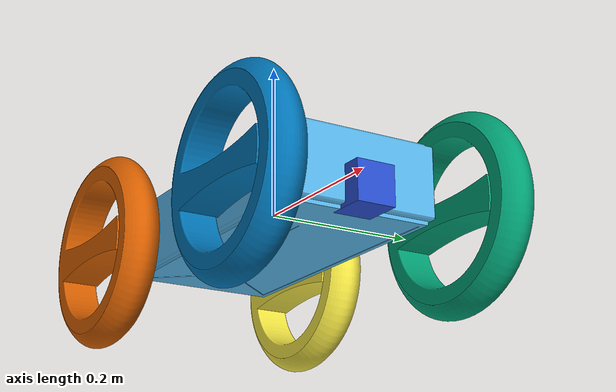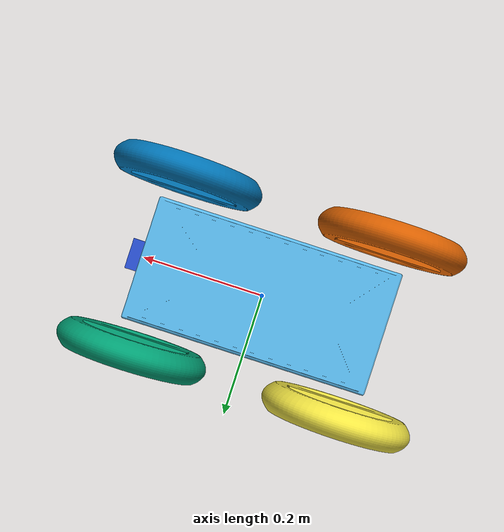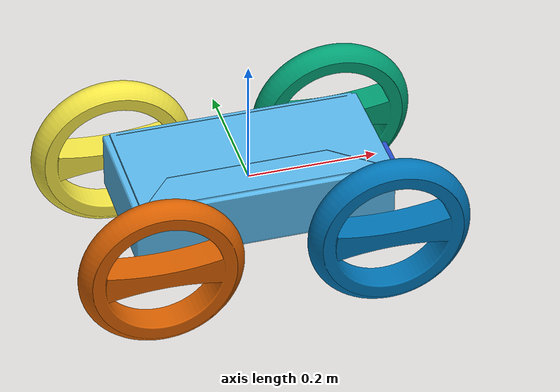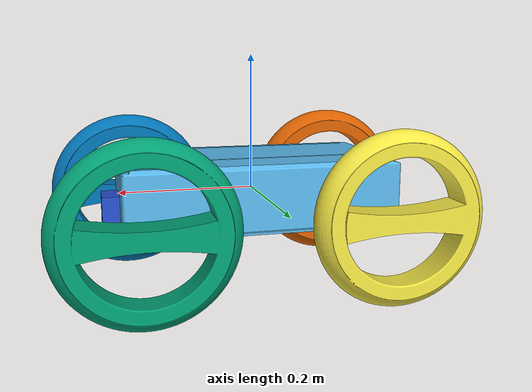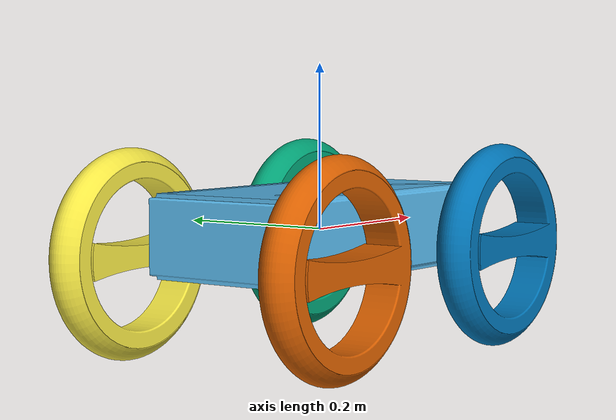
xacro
<?xml version='1.0'?>

<robot name="iBot"
  xmlns:xacro="http://www.ros.org/wiki/xacro">

  <xacro:include filename="iBot.gazebo" />

  <link name="robot_footprint"></link>

  <joint name="robot_footprint_joint" type="fixed">
    <origin xyz="0 0 0" rpy="0 0 0" />
    <parent link="robot_footprint"/>
    <child link="chassis" />
  </joint>

  <link name='chassis'>
    <pose>0 0 0 0 0 0</pose>

    <inertial>
      <mass value="15.0"/>
      <origin xyz="0.0 0 0" rpy=" 0 0 0"/>
      <inertia ixx="0.1" ixy="0" ixz="0" iyy="0.1" iyz="0" izz="0.1" />
    </inertial>

    <collision name='collision'>
      <origin xyz="0 0 0" rpy=" 0 0 0"/>
      <geometry>
        <box size=".4 .2 .1"/>
      </geometry>
    </collision>

    <visual name='chassis_visual'>
      <origin xyz="0 -0.1 0" rpy=" 0 0 0"/>
      <geometry>
        <mesh filename="package://iBot/meshes/chassis.obj"/>
      </geometry>
      <transparency>0</transparency>
      <cast_shadows>1</cast_shadows>
    </visual>
  </link>

  <link name="front_left_wheel">
    <inertial>
      <mass value="5.0"/>
      <origin xyz="0.0 0 0" rpy=" 0 1.5707 1.5707"/>
      <inertia ixx="0.0285" ixy="0" ixz="0" iyy="0.0285" iyz="0" izz="0.0391" />
    </inertial>

    <visual>
      <origin xyz="0 -0.025 0" rpy=" 0 0 0"/>
      <geometry>
        <mesh filename="package://iBot/meshes/wheel.obj"/>
      </geometry>
      <transparency>0</transparency>
      <cast_shadows>1</cast_shadows>
    </visual>

    <collision>
      <origin xyz="0.0 0 0" rpy=" 0 1.5707 1.5707"/>
      <geometry>
        <cylinder length="0.05" radius="0.125"/>
      </geometry>
    </collision>
  </link>

  <link name="back_left_wheel">
    <inertial>
      <mass value="5.0"/>
      <origin xyz="0.0 0 0" rpy=" 0 1.5707 1.5707"/>
      <inertia ixx="0.0285" ixy="0" ixz="0" iyy="0.0285" iyz="0" izz="0.0391" />
    </inertial>

    <visual>
      <origin xyz="0 -0.025 0" rpy=" 0 0 0"/>
      <geometry>
        <mesh filename="package://iBot/meshes/wheel.obj"/>
      </geometry>
      <transparency>0</transparency>
      <cast_shadows>1</cast_shadows>
    </visual>

    <collision>
      <origin xyz="0.0 0 0" rpy=" 0 1.5707 1.5707"/>
      <geometry>
        <cylinder length="0.05" radius="0.125"/>
      </geometry>
    </collision>
  </link>

  <link name="front_right_wheel">
    <inertial>
      <mass value="5.0"/>
      <origin xyz="0.0 0 0" rpy=" 0 1.5707 1.5707"/>
      <inertia ixx="0.1" ixy="0" ixz="0" iyy="0.1" iyz="0" izz="0.1" />
    </inertial>

    <visual>
      <origin xyz="0 -0.025 0" rpy=" 0 0 0"/>
      <geometry>
        <mesh filename="package://iBot/meshes/wheel.obj"/>
      </geometry>
      <transparency>0</transparency>
      <cast_shadows>1</cast_shadows>
    </visual>

    <collision>
      <origin xyz="0.0 0 0" rpy=" 0 1.5707 1.5707"/>
      <geometry>
        <cylinder length="0.05" radius="0.125"/>
      </geometry>
    </collision>
  </link>

  <link name="back_right_wheel">
    <inertial>
      <mass value="5.0"/>
      <origin xyz="0.0 0 0" rpy=" 0 1.5707 1.5707"/>
      <inertia ixx="0.0285" ixy="0" ixz="0" iyy="0.0285" iyz="0" izz="0.0391" />
    </inertial>

    <visual>
      <origin xyz="0 -0.025 0" rpy=" 0 0 0"/>
      <geometry>
        <mesh filename="package://iBot/meshes/wheel.obj"/>
      </geometry>
      <transparency>0</transparency>
      <cast_shadows>1</cast_shadows>
    </visual>

    <collision>
      <origin xyz="0.0 0 0" rpy=" 0 1.5707 1.5707"/>
      <geometry>
        <cylinder length="0.05" radius="0.125"/>
      </geometry>
    </collision>
  </link>

  <link name="camera">
    <inertial>
      <mass value="0.1"/>
      <origin xyz="0.05 0.05 0.05" rpy=" 0 0 0"/>
      <inertia ixx="1e-6" ixy="0" ixz="0" iyy="1e-6" iyz="0" izz="1e-6" />
    </inertial>

    <visual name="camera_visual">
      <origin xyz="0 0 0" rpy="0 0 0" />
      <geometry>
        <box size="0.05 0.05 0.05"/>
      </geometry>
    </visual>

    <collision name="camera_colision">
      <origin xyz="0 0 0" rpy="0 0 0" />
      <geometry>
        <box size="0.05 0.05 0.05"/>
      </geometry>
    </collision>
  </link>

  <link name="imu">
    <inertial>
      <mass value="0.1"/>
      <origin xyz="0.05 0.05 0.05" rpy=" 0 0 0"/>
      <inertia ixx="1e-6" ixy="0" ixz="0" iyy="1e-6" iyz="0" izz="1e-6" />
    </inertial>

    <visual name="imu_visual">
      <origin xyz="0 0 0" rpy="0 0 0" />
      <geometry>
        <box size="0.05 0.05 0.05"/>
      </geometry>
    </visual>

    <collision name="imu_colision">
      <origin xyz="0 0 0" rpy="0 0 0" />
      <geometry>
        <box size="0.05 0.05 0.05"/>
      </geometry>
    </collision>
  </link>

  <joint type="continuous" name="front_left_wheel_joint">
    <origin xyz="0.175 0.15 -0.025" rpy="0 0 0"/>
    <child link="front_left_wheel"/>
    <parent link="chassis"/>
    <axis xyz="0 1 0" rpy="0 0 0"/>
    <limit effort="10000" velocity="1000"/>
    <dynamics damping="1.0" friction="1.0"/>
  </joint>

  <joint type="continuous" name="front_right_wheel_joint">
    <origin xyz="0.175 -0.15 -0.025" rpy="0 0 0"/>
    <child link="front_right_wheel"/>
    <parent link="chassis"/>
    <axis xyz="0 1 0" rpy="0 0 0"/>
    <limit effort="10000" velocity="1000"/>
    <dynamics damping="1.0" friction="1.0"/>
  </joint>

  <joint type="continuous" name="back_left_wheel_joint">
    <origin xyz="-0.175 0.15 -0.025" rpy="0 0 0"/>
    <child link="back_left_wheel"/>
    <parent link="chassis"/>
    <axis xyz="0 1 0" rpy="0 0 0"/>
    <limit effort="10000" velocity="1000"/>
    <dynamics damping="1.0" friction="1.0"/>
  </joint>

  <joint type="continuous" name="back_right_wheel_joint">
    <origin xyz="-0.175 -0.15 -0.025" rpy="0 0 0"/>
    <child link="back_right_wheel"/>
    <parent link="chassis"/>
    <axis xyz="0 1 0" rpy="0 0 0"/>
    <limit effort="10000" velocity="1000"/>
    <dynamics damping="1.0" friction="1.0"/>
  </joint>

  <joint type="fixed" name="camera_joint">
    <origin xyz="0.2 0 -0.025" rpy="0 1.5707 0"/>
    <child link="camera"/>
    <parent link="chassis"/>
  </joint>

  <joint type="fixed" name="imu_joint">
    <origin xyz="0 0 0" rpy="0 0 0"/>
    <child link="imu"/>
    <parent link="chassis"/>
  </joint>

  <gazebo reference="camera">
    <material>Gazebo/Blue</material>
  </gazebo>

  <gazebo reference="imu">
    <material>Gazebo/Red</material>
  </gazebo>

</robot>
